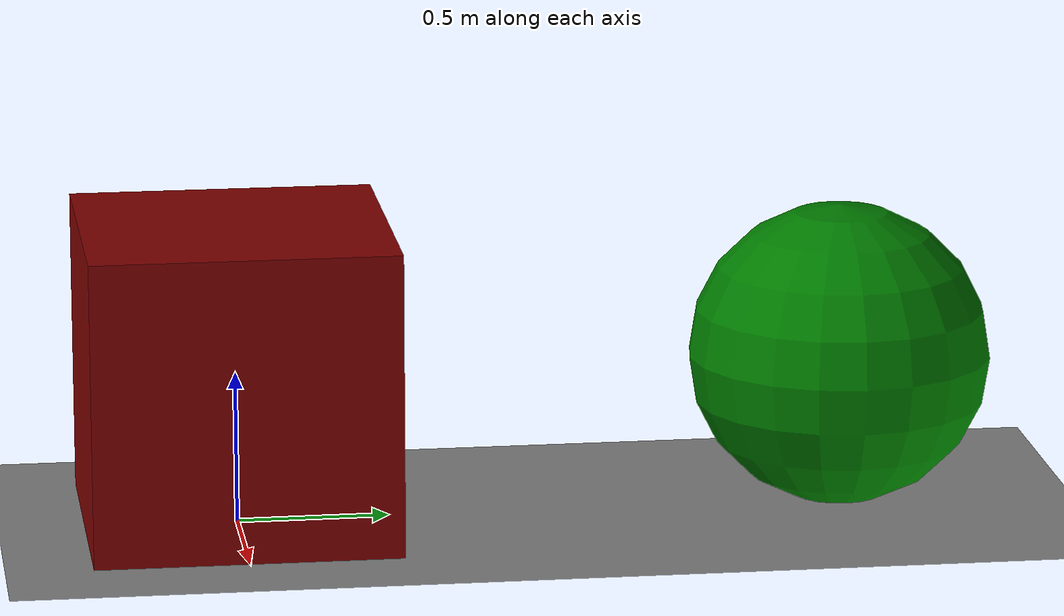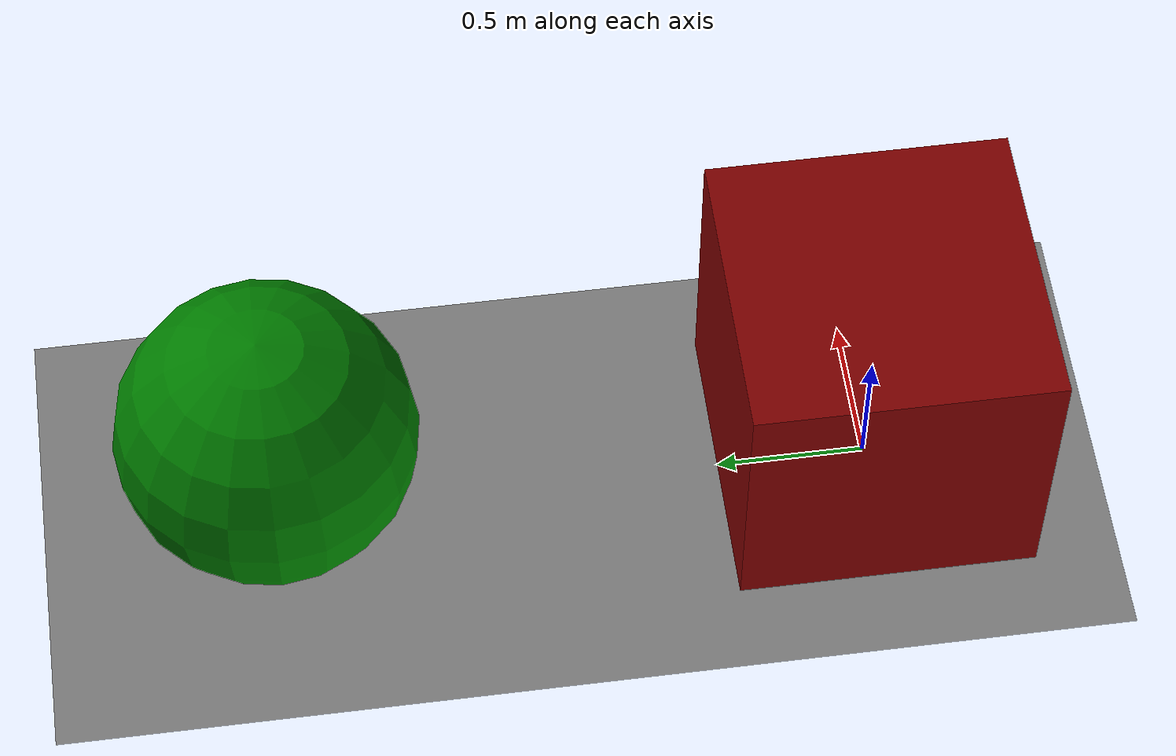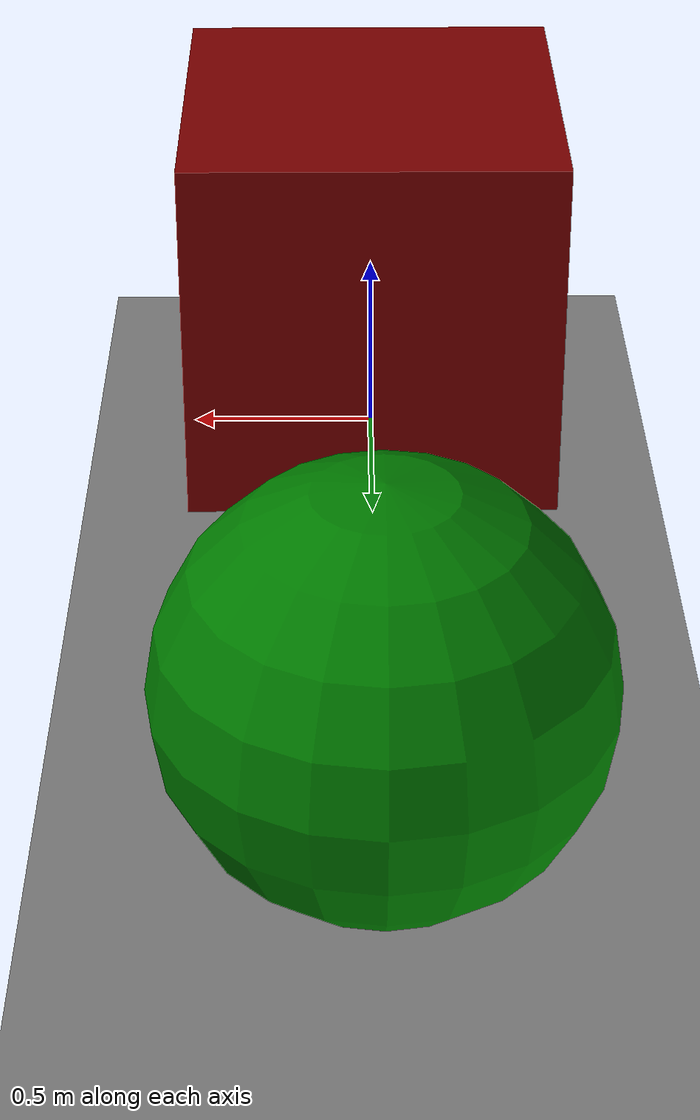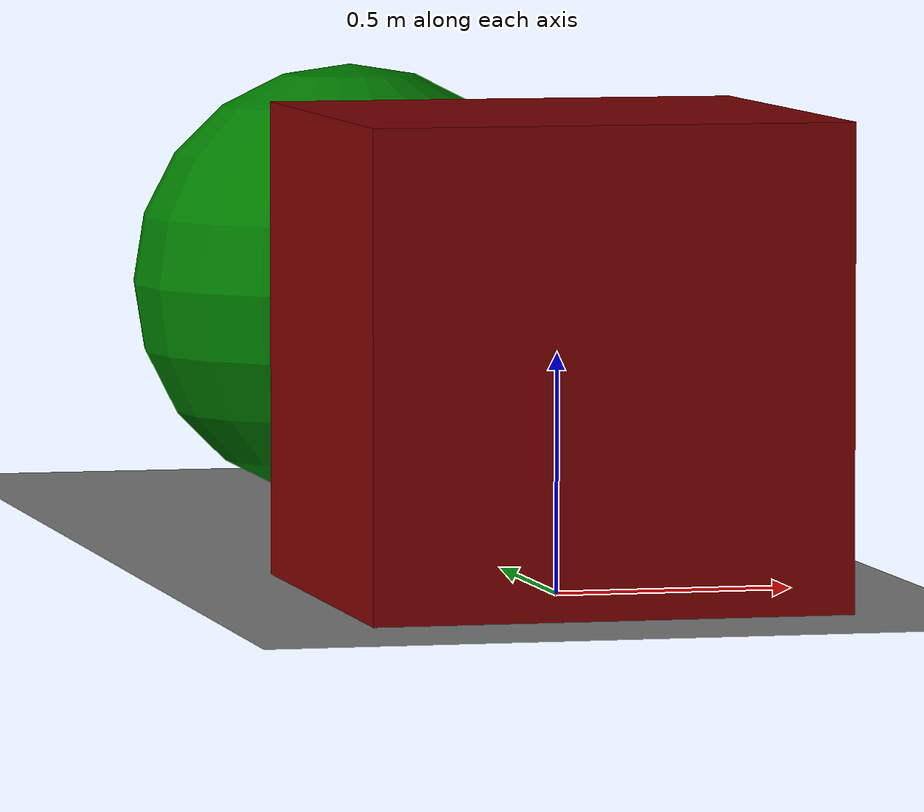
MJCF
<mujoco>
	<worldbody>
		<light diffuse=".7 .7 .7" dir="0 0 -1" directional="true" />
		<geom name="floor" type="plane" size="10 10 10" />
		<body name="cube" pos="0 0 .5">
			<joint name="slider" type="slide" axis="1 0 0"/>
			<geom type="box" size=".5 .5 .5" rgba=" .5 0 0 1" />
			<body name="inner_body"/>
		</body>
		<geom name="trash_geom" type="sphere" size=".5" pos="0 2 .5" rgba="0 .5 0 1"/>
		<body name="trash_body" pos = "0 0 2"/>
	</worldbody>
	<actuator>
		<position name="cube_ctrl" joint="slider" kp="500"/>
	</actuator>
	<sensor>
		<framepos name="cube_pos" objtype="body" objname="cube" />
	</sensor>
	<equality>
		<weld name="fix" body1="cube" body2="world" active="false"/>
	</equality>
</mujoco>
